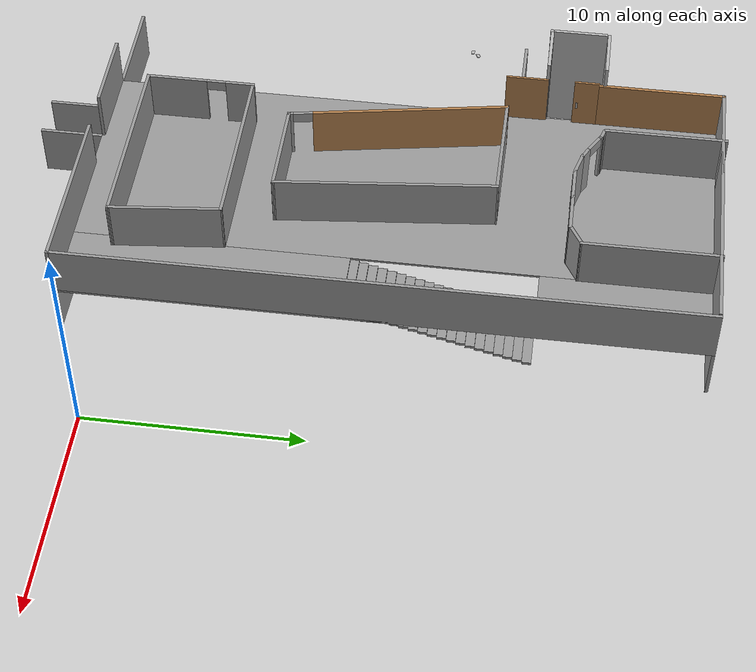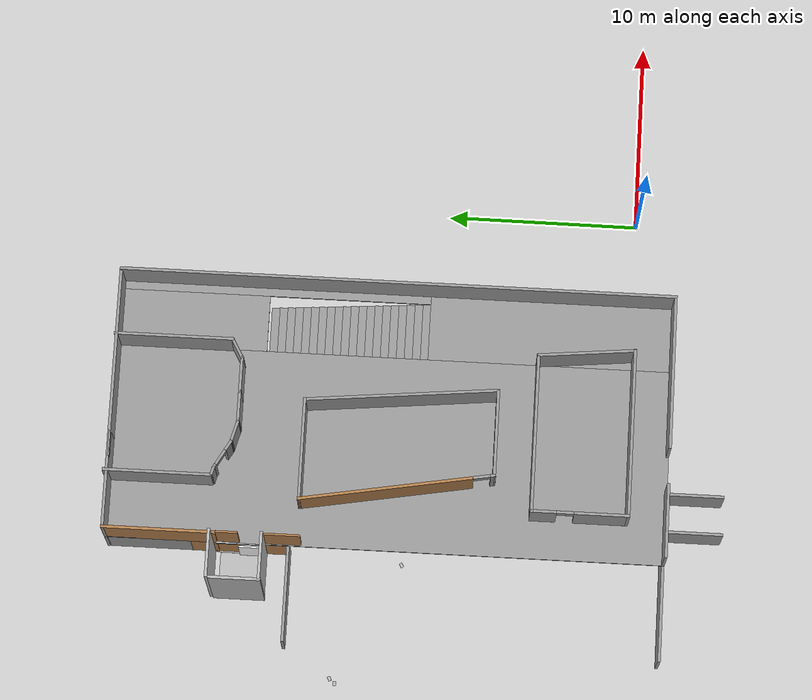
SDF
<sdf version="1.5">
 <world name="default">
  <model name="ground_plane">
   <static>1</static>
   <link name="link">
    <collision name="collision">
     <geometry><plane><normal>0 0 1</normal><size>100 100</size></plane></geometry>
     <surface>
      <contact><collide_bitmask>65535</collide_bitmask></contact>
      <friction><ode><mu>100</mu><mu2>50</mu2></ode></friction>
     </surface>
    </collision>
    <visual name="visual">
     <cast_shadows>0</cast_shadows>
     <geometry><plane><normal>0 0 1</normal><size>100 100</size></plane></geometry>
     <material>
      <script><uri>file://media/materials/scripts/gazebo.material</uri><name>Gazebo/Grey</name></script>
     </material>
    </visual>
   </link>
  </model>
  <model name="elevator">
   <pose>-20 20 0.001 -0 -0 -0</pose>
   <link name="link">
    <inertial>
     <mass>800</mass>
     <inertia><ixx>1</ixx><ixy>0</ixy><ixz>0</ixz><iyy>1</iyy><iyz>0</iyz><izz>1</izz></inertia>
    </inertial>
    <collision name="floor_collision"><geometry><box><size>2.25 2.25 0.001</size></box></geometry></collision>
    <visual name="floor_visual"><geometry><box><size>2.25 2.25 0.001</size></box></geometry></visual>
    <collision name="wall1_collision_bot_in">
     <pose>0.06 0.25 1.125 0 -0 0</pose>
     <geometry><box><size>0.01 0.09 0.36</size></box></geometry>
    </collision>
    <visual name="wall1_visual_bot_in">
     <pose>1 1.25 1.125 0 -0 1.577</pose>
     <geometry><box><size>0.01 0.09 0.36</size></box></geometry>
     <material>
      <script>
       <uri>model://elevator_shaft/materials/scripts</uri>
       <uri>model://elevator_shaft/materials/textures</uri>
       <name>Up_down/Diffuse</name>
      </script>
     </material>
    </visual>
   </link>
   <link name="door">
    <pose>1.0745 -0.5 1.125 0 -0 0</pose>
    <collision name="collision"><geometry><box><size>0.08 1.2 2.25</size></box></geometry></collision>
    <visual name="visual">
     <material>
      <script>
       <uri>model://elevator_door/materials/scripts</uri>
       <uri>model://elevator_door/materials/textures</uri>
       <name>Elevator_door/Picture</name>
      </script>
      <shader type="pixel"><normal_map>__default__</normal_map></shader>
      <ambient>1 1 1 1</ambient>
      <diffuse>1 1 1 1</diffuse>
      <specular>0 0 0 1</specular>
      <emissive>0 0 0 1</emissive>
     </material>
     <geometry><box><size>0.08 1.2 2.25</size></box></geometry>
    </visual>
    <inertial>
     <inertia><ixx>1</ixx><ixy>0</ixy><ixz>0</ixz><iyy>1</iyy><iyz>0</iyz><izz>1</izz></inertia>
     <mass>1</mass>
    </inertial>
   </link>
   <joint name="door" type="prismatic">
    <parent>link</parent>
    <child>door</child>
    <axis>
     <xyz>0 1 0</xyz>
     <limit><lower>0</lower><upper>1.19</upper><effort>0.525</effort></limit>
     <dynamics>
      <damping>1</damping>
      <spring_reference>0</spring_reference>
      <spring_stiffness>0</spring_stiffness>
     </dynamics>
     <use_parent_model_frame>0</use_parent_model_frame>
    </axis>
   </joint>
   <joint name="lift" type="prismatic">
    <parent>world</parent>
    <child>link</child>
    <axis>
     <xyz>0 0 1</xyz>
     <limit><lower>0</lower><upper>10</upper><effort>100000</effort></limit>
     <dynamics>
      <damping>50</damping>
      <spring_reference>0</spring_reference>
      <spring_stiffness>0</spring_stiffness>
     </dynamics>
     <use_parent_model_frame>0</use_parent_model_frame>
    </axis>
    <physics>
     <ode><implicit_spring_damper>1</implicit_spring_damper><limit><cfm>0</cfm><erp>0.2</erp></limit></ode>
    </physics>
   </joint>
   <plugin name="elevator_plugin" filename="libElevatorPlugin.so">
    <lift_joint>elevator::lift</lift_joint>
    <door_joint>elevator::door</door_joint>
    <floor_height>2.675</floor_height>
    <door_wait_time>8</door_wait_time>
    <topic>~/elevator</topic>
   </plugin>
  </model>
  <model name="elevator_shaft">
   <pose>-20 20 0 0 -0 0</pose>
   <static>1</static>
   <link name="link">
    <collision name="shaft_wall1_collision">
     <pose>0 1.45 3 0 -0 0</pose>
     <geometry><box><size>2.5 0.15 6</size></box></geometry>
    </collision>
    <visual name="shaft_wall1_visual">
     <pose>0 1.45 3 0 -0 0</pose>
     <geometry><box><size>2.5 0.15 6</size></box></geometry>
    </visual>
    <collision name="shaft_wall2_collision">
     <pose>0 -1.25 3 0 -0 0</pose>
     <geometry><box><size>2.5 0.15 6</size></box></geometry>
    </collision>
    <visual name="shaft_wall2_visual">
     <pose>0 -1.25 3 0 -0 0</pose>
     <geometry><box><size>2.5 0.15 6</size></box></geometry>
    </visual>
    <collision name="shaft_wall3_collision">
     <pose>-1.25 0 3 0 -0 0</pose>
     <geometry><box><size>0.15 2.7 6</size></box></geometry>
    </collision>
    <visual name="shaft_wall3_visual">
     <pose>-1.25 0 3 0 -0 0</pose>
     <geometry><box><size>0.15 2.7 6</size></box></geometry>
    </visual>
    <collision name="floor0_collision">
     <pose>1.19 0 0.001 0 -0 0</pose>
     <geometry><box><size>0.12 2.5 0.001</size></box></geometry>
    </collision>
    <visual name="floor0_visual">
     <pose>1.19 0 0.001 0 -0 0</pose>
     <geometry><box><size>0.12 2.5 0.001</size></box></geometry>
    </visual>
    <collision name="floor1_collision">
     <pose>1.19 0 2.525 0 -0 0</pose>
     <geometry><box><size>0.12 2.5 0.15</size></box></geometry>
    </collision>
    <visual name="floor1_visual">
     <pose>1.19 0 2.525 0 -0 0</pose>
     <geometry><box><size>0.12 2.5 0.15</size></box></geometry>
    </visual>
   </link>
  </model>
  <model name="elevator_2.5">
   <pose>-18.75 20 0 0 -0 0</pose>
   <link name="Wall_0">
    <collision name="Wall_0_Collision">
     <geometry><box><size>1.4 0.15 2.5</size></box></geometry>
     <pose>0 0 1.25 0 -0 0</pose>
    </collision>
    <visual name="Wall_0_Visual">
     <pose>0 0 1.25 0 -0 0</pose>
     <meta><layer>0</layer></meta>
     <geometry><box><size>1.4 0.15 2.5</size></box></geometry>
     <material><script><name>Gazebo/Wood</name><uri>__default__</uri></script></material>
    </visual>
    <pose>0 -1.875 0 0 0 -1.5708</pose>
   </link>
   <pose>0.02 -1.1 1.15 0 -0 0</pose>
   <link name="Wall_2">
    <collision name="Wall_2_Collision">
     <geometry><box><size>1.4 0.15 2.5</size></box></geometry>
     <pose>0 0 1.25 0 -0 0</pose>
    </collision>
    <visual name="Wall_2_Visual">
     <pose>0 0 1.25 0 -0 0</pose>
     <geometry><box><size>1.4 0.15 2.5</size></box></geometry>
     <material><script><name>Gazebo/Wood</name><uri>__default__</uri></script></material>
    </visual>
    <pose>0 1.875 0 0 0 -1.5708</pose>
   </link>
   <link name="right_elevator_wall_floor_0">
    <collision name="wall1_collision">
     <pose>0 0.6 1.125 0 -0 0</pose>
     <geometry><box><size>0.1 1.15 2.85</size></box></geometry>
    </collision>
    <visual name="wall1_visual">
     <pose>0 0.6 1.125 0 -0 0</pose>
     <geometry><box><size>0.1 1.15 2.85</size></box></geometry>
     <material><script><name>Gazebo/Wood</name><uri>__default__</uri></script></material>
    </visual>
    <collision name="wall1_collision_bot">
     <pose>0.06 0.3 1.125 0 -0 0</pose>
     <geometry><box><size>0.01 0.09 0.36</size></box></geometry>
    </collision>
    <visual name="wall1_visual_bot">
     <pose>0.06 0.25 1.125 0 -0 0</pose>
     <geometry><box><size>0.01 0.09 0.36</size></box></geometry>
     <material>
      <script>
       <uri>model://elevator_shaft_first_floor/materials/scripts</uri>
       <uri>model://elevator_shaft_first_floor/materials/textures</uri>
       <name>Up_down_first_floor/Diffuse</name>
      </script>
     </material>
    </visual>
   </link>
   <static>1</static>
  </model>
  <model name="Building_37">
   <pose>-14.375 11 0 0 -0 0</pose>
   <link name="Floor_0">
    <pose>2.5 1.3455 2.5 0 -0 0</pose>
    <visual name="Floor_0_Visual_0">
     <pose>-1.7875 0.15 0.05 0 -0 0</pose>
     <meta><layer>1</layer></meta>
     <geometry><box><size>10.325 29.15 0.1</size></box></geometry>
     <material>
      <script><uri>file://media/materials/scripts/gazebo.material</uri><name>Gazebo/Grey</name></script>
      <ambient>1 1 1 1</ambient>
     </material>
    </visual>
    <collision name="Floor_0_Collision_0">
     <geometry><box><size>10.325 29.15 0.1</size></box></geometry>
     <pose>-1.7875 0.15 0.05 0 -0 0</pose>
    </collision>
    <visual name="Floor_0_Visual_1">
     <pose>5.1625 -8 0.05 0 -0 0</pose>
     <meta><layer>1</layer></meta>
     <geometry><box><size>3.575 12.85 0.1</size></box></geometry>
     <material>
      <script><uri>file://media/materials/scripts/gazebo.material</uri><name>Gazebo/Grey</name></script>
      <ambient>1 1 1 1</ambient>
     </material>
    </visual>
    <collision name="Floor_0_Collision_1">
     <geometry><box><size>3.575 12.85 0.1</size></box></geometry>
     <pose>5.1625 -8 0.05 0 -0 0</pose>
    </collision>
    <visual name="Floor_0_Visual_2">
     <pose>6.6625 6.567 0.05 0 -0 0</pose>
     <meta><layer>1</layer></meta>
     <geometry><box><size>0.575 16.325 0.1</size></box></geometry>
     <material>
      <script><uri>file://media/materials/scripts/gazebo.material</uri><name>Gazebo/Grey</name></script>
      <ambient>1 1 1 1</ambient>
     </material>
    </visual>
    <collision name="Floor_0_Collision_2">
     <geometry><box><size>0.575 16.325 0.1</size></box></geometry>
     <pose>6.6625 6.567 0.05 0 -0 0</pose>
    </collision>
    <visual name="Floor_0_Visual_3">
     <pose>4.875 10.817 0.05 0 -0 0</pose>
     <meta><layer>1</layer></meta>
     <geometry><box><size>3 7.825 0.1</size></box></geometry>
     <material>
      <script><uri>file://media/materials/scripts/gazebo.material</uri><name>Gazebo/Grey</name></script>
      <ambient>1 1 1 1</ambient>
     </material>
    </visual>
    <collision name="Floor_0_Collision_3">
     <geometry><box><size>3 7.825 0.1</size></box></geometry>
     <pose>4.875 10.817 0.05 0 -0 0</pose>
    </collision>
   </link>
   <link name="Stairs_1">
    <visual name="Stairs_1_Visual_0">
     <pose>7.375 8.0375 0.0625 0 -0 0</pose>
     <meta><layer>2</layer></meta>
     <geometry><box><size>3 0.425 0.125</size></box></geometry>
     <material>
      <script><uri>file://media/materials/scripts/gazebo.material</uri><name>Gazebo/Grey</name></script>
      <ambient>1 1 1 1</ambient>
     </material>
    </visual>
    <collision name="Stairs_1_Collision_0">
     <geometry><box><size>3 0.425 0.125</size></box></geometry>
     <pose>7.375 8.0375 0.0625 0 -0 0</pose>
    </collision>
    <visual name="Stairs_1_Visual_1">
     <pose>7.375 7.6125 0.1875 0 -0 0</pose>
     <meta><layer>2</layer></meta>
     <geometry><box><size>3 0.425 0.125</size></box></geometry>
     <material>
      <script><uri>file://media/materials/scripts/gazebo.material</uri><name>Gazebo/Grey</name></script>
      <ambient>1 1 1 1</ambient>
     </material>
    </visual>
    <collision name="Stairs_1_Collision_1">
     <geometry><box><size>3 0.425 0.125</size></box></geometry>
     <pose>7.375 7.6125 0.1875 0 -0 0</pose>
    </collision>
    <visual name="Stairs_1_Visual_2">
     <pose>7.375 7.1875 0.3125 0 -0 0</pose>
     <meta><layer>2</layer></meta>
     <geometry><box><size>3 0.425 0.125</size></box></geometry>
     <material>
      <script><uri>file://media/materials/scripts/gazebo.material</uri><name>Gazebo/Grey</name></script>
      <ambient>1 1 1 1</ambient>
     </material>
    </visual>
    <collision name="Stairs_1_Collision_2">
     <geometry><box><size>3 0.425 0.125</size></box></geometry>
     <pose>7.375 7.1875 0.3125 0 -0 0</pose>
    </collision>
    <visual name="Stairs_1_Visual_3">
     <pose>7.375 6.7625 0.4375 0 -0 0</pose>
     <meta><layer>2</layer></meta>
     <geometry><box><size>3 0.425 0.125</size></box></geometry>
     <material>
      <script><uri>file://media/materials/scripts/gazebo.material</uri><name>Gazebo/Grey</name></script>
      <ambient>1 1 1 1</ambient>
     </material>
    </visual>
    <collision name="Stairs_1_Collision_3">
     <geometry><box><size>3 0.425 0.125</size></box></geometry>
     <pose>7.375 6.7625 0.4375 0 -0 0</pose>
    </collision>
    <visual name="Stairs_1_Visual_4">
     <pose>7.375 6.3375 0.5625 0 -0 0</pose>
     <meta><layer>2</layer></meta>
     <geometry><box><size>3 0.425 0.125</size></box></geometry>
     <material>
      <script><uri>file://media/materials/scripts/gazebo.material</uri><name>Gazebo/Grey</name></script>
      <ambient>1 1 1 1</ambient>
     </material>
    </visual>
    <collision name="Stairs_1_Collision_4">
     <geometry><box><size>3 0.425 0.125</size></box></geometry>
     <pose>7.375 6.3375 0.5625 0 -0 0</pose>
    </collision>
    <visual name="Stairs_1_Visual_5">
     <pose>7.375 5.9125 0.6875 0 -0 0</pose>
     <meta><layer>2</layer></meta>
     <geometry><box><size>3 0.425 0.125</size></box></geometry>
     <material>
      <script><uri>file://media/materials/scripts/gazebo.material</uri><name>Gazebo/Grey</name></script>
      <ambient>1 1 1 1</ambient>
     </material>
    </visual>
    <collision name="Stairs_1_Collision_5">
     <geometry><box><size>3 0.425 0.125</size></box></geometry>
     <pose>7.375 5.9125 0.6875 0 -0 0</pose>
    </collision>
    <visual name="Stairs_1_Visual_6">
     <pose>7.375 5.4875 0.8125 0 -0 0</pose>
     <meta><layer>2</layer></meta>
     <geometry><box><size>3 0.425 0.125</size></box></geometry>
     <material>
      <script><uri>file://media/materials/scripts/gazebo.material</uri><name>Gazebo/Grey</name></script>
      <ambient>1 1 1 1</ambient>
     </material>
    </visual>
    <collision name="Stairs_1_Collision_6">
     <geometry><box><size>3 0.425 0.125</size></box></geometry>
     <pose>7.375 5.4875 0.8125 0 -0 0</pose>
    </collision>
    <visual name="Stairs_1_Visual_7">
     <pose>7.375 5.0625 0.9375 0 -0 0</pose>
     <meta><layer>2</layer></meta>
     <geometry><box><size>3 0.425 0.125</size></box></geometry>
     <material>
      <script><uri>file://media/materials/scripts/gazebo.material</uri><name>Gazebo/Grey</name></script>
      <ambient>1 1 1 1</ambient>
     </material>
    </visual>
    <collision name="Stairs_1_Collision_7">
     <geometry><box><size>3 0.425 0.125</size></box></geometry>
     <pose>7.375 5.0625 0.9375 0 -0 0</pose>
    </collision>
    <visual name="Stairs_1_Visual_8">
     <pose>7.375 4.6375 1.0625 0 -0 0</pose>
     <meta><layer>2</layer></meta>
     <geometry><box><size>3 0.425 0.125</size></box></geometry>
     <material>
      <script><uri>file://media/materials/scripts/gazebo.material</uri><name>Gazebo/Grey</name></script>
      <ambient>1 1 1 1</ambient>
     </material>
    </visual>
    <collision name="Stairs_1_Collision_8">
     <geometry><box><size>3 0.425 0.125</size></box></geometry>
     <pose>7.375 4.6375 1.0625 0 -0 0</pose>
    </collision>
    <visual name="Stairs_1_Visual_9">
     <pose>7.375 4.2125 1.1875 0 -0 0</pose>
     <meta><layer>2</layer></meta>
     <geometry><box><size>3 0.425 0.125</size></box></geometry>
     <material>
      <script><uri>file://media/materials/scripts/gazebo.material</uri><name>Gazebo/Grey</name></script>
      <ambient>1 1 1 1</ambient>
     </material>
    </visual>
    <collision name="Stairs_1_Collision_9">
     <geometry><box><size>3 0.425 0.125</size></box></geometry>
     <pose>7.375 4.2125 1.1875 0 -0 0</pose>
    </collision>
    <visual name="Stairs_1_Visual_10">
     <pose>7.375 3.7875 1.3125 0 -0 0</pose>
     <meta><layer>2</layer></meta>
     <geometry><box><size>3 0.425 0.125</size></box></geometry>
     <material>
      <script><uri>file://media/materials/scripts/gazebo.material</uri><name>Gazebo/Grey</name></script>
      <ambient>1 1 1 1</ambient>
     </material>
    </visual>
    <collision name="Stairs_1_Collision_10">
     <geometry><box><size>3 0.425 0.125</size></box></geometry>
     <pose>7.375 3.7875 1.3125 0 -0 0</pose>
    </collision>
    <visual name="Stairs_1_Visual_11">
     <pose>7.375 3.3625 1.4375 0 -0 0</pose>
     <meta><layer>2</layer></meta>
     <geometry><box><size>3 0.425 0.125</size></box></geometry>
     <material>
      <script><uri>file://media/materials/scripts/gazebo.material</uri><name>Gazebo/Grey</name></script>
      <ambient>1 1 1 1</ambient>
     </material>
    </visual>
    <collision name="Stairs_1_Collision_11">
     <geometry><box><size>3 0.425 0.125</size></box></geometry>
     <pose>7.375 3.3625 1.4375 0 -0 0</pose>
    </collision>
    <visual name="Stairs_1_Visual_12">
     <pose>7.375 2.9375 1.5625 0 -0 0</pose>
     <meta><layer>2</layer></meta>
     <geometry><box><size>3 0.425 0.125</size></box></geometry>
     <material>
      <script><uri>file://media/materials/scripts/gazebo.material</uri><name>Gazebo/Grey</name></script>
      <ambient>1 1 1 1</ambient>
     </material>
    </visual>
    <collision name="Stairs_1_Collision_12">
     <geometry><box><size>3 0.425 0.125</size></box></geometry>
     <pose>7.375 2.9375 1.5625 0 -0 0</pose>
    </collision>
    <visual name="Stairs_1_Visual_13">
     <pose>7.375 2.5125 1.6875 0 -0 0</pose>
     <meta><layer>2</layer></meta>
     <geometry><box><size>3 0.425 0.125</size></box></geometry>
     <material>
      <script><uri>file://media/materials/scripts/gazebo.material</uri><name>Gazebo/Grey</name></script>
      <ambient>1 1 1 1</ambient>
     </material>
    </visual>
    <collision name="Stairs_1_Collision_13">
     <geometry><box><size>3 0.425 0.125</size></box></geometry>
     <pose>7.375 2.5125 1.6875 0 -0 0</pose>
    </collision>
    <visual name="Stairs_1_Visual_14">
     <pose>7.375 2.0875 1.8125 0 -0 0</pose>
     <meta><layer>2</layer></meta>
     <geometry><box><size>3 0.425 0.125</size></box></geometry>
     <material>
      <script><uri>file://media/materials/scripts/gazebo.material</uri><name>Gazebo/Grey</name></script>
      <ambient>1 1 1 1</ambient>
     </material>
    </visual>
    <collision name="Stairs_1_Collision_14">
     <geometry><box><size>3 0.425 0.125</size></box></geometry>
     <pose>7.375 2.0875 1.8125 0 -0 0</pose>
    </collision>
    <visual name="Stairs_1_Visual_15">
     <pose>7.375 1.6625 1.9375 0 -0 0</pose>
     <meta><layer>2</layer></meta>
     <geometry><box><size>3 0.425 0.125</size></box></geometry>
     <material>
      <script><uri>file://media/materials/scripts/gazebo.material</uri><name>Gazebo/Grey</name></script>
      <ambient>1 1 1 1</ambient>
     </material>
    </visual>
    <collision name="Stairs_1_Collision_15">
     <geometry><box><size>3 0.425 0.125</size></box></geometry>
     <pose>7.375 1.6625 1.9375 0 -0 0</pose>
    </collision>
    <visual name="Stairs_1_Visual_16">
     <pose>7.375 1.2375 2.0625 0 -0 0</pose>
     <meta><layer>2</layer></meta>
     <geometry><box><size>3 0.425 0.125</size></box></geometry>
     <material>
      <script><uri>file://media/materials/scripts/gazebo.material</uri><name>Gazebo/Grey</name></script>
      <ambient>1 1 1 1</ambient>
     </material>
    </visual>
    <collision name="Stairs_1_Collision_16">
     <geometry><box><size>3 0.425 0.125</size></box></geometry>
     <pose>7.375 1.2375 2.0625 0 -0 0</pose>
    </collision>
    <visual name="Stairs_1_Visual_17">
     <pose>7.375 0.8125 2.1875 0 -0 0</pose>
     <meta><layer>2</layer></meta>
     <geometry><box><size>3 0.425 0.125</size></box></geometry>
     <material>
      <script><uri>file://media/materials/scripts/gazebo.material</uri><name>Gazebo/Grey</name></script>
      <ambient>1 1 1 1</ambient>
     </material>
    </visual>
    <collision name="Stairs_1_Collision_17">
     <geometry><box><size>3 0.425 0.125</size></box></geometry>
     <pose>7.375 0.8125 2.1875 0 -0 0</pose>
    </collision>
    <visual name="Stairs_1_Visual_18">
     <pose>7.375 0.3875 2.3125 0 -0 0</pose>
     <meta><layer>2</layer></meta>
     <geometry><box><size>3 0.425 0.125</size></box></geometry>
     <material>
      <script><uri>file://media/materials/scripts/gazebo.material</uri><name>Gazebo/Grey</name></script>
      <ambient>1 1 1 1</ambient>
     </material>
    </visual>
    <collision name="Stairs_1_Collision_18">
     <geometry><box><size>3 0.425 0.125</size></box></geometry>
     <pose>7.375 0.3875 2.3125 0 -0 0</pose>
    </collision>
    <visual name="Stairs_1_Visual_19">
     <pose>7.375 -0.037501 2.4375 0 -0 0</pose>
     <meta><layer>2</layer></meta>
     <geometry><box><size>3 0.425 0.125</size></box></geometry>
     <material>
      <script><uri>file://media/materials/scripts/gazebo.material</uri><name>Gazebo/Grey</name></script>
      <ambient>1 1 1 1</ambient>
     </material>
    </visual>
    <collision name="Stairs_1_Collision_19">
     <geometry><box><size>3 0.425 0.125</size></box></geometry>
     <pose>7.375 -0.037501 2.4375 0 -0 0</pose>
    </collision>
   </link>
   <link name="Wall_27">
    <collision name="Wall_27_Collision">
     <geometry><box><size>6.9 0.15 2.5</size></box></geometry>
     <pose>0 0 1.25 0 -0 0</pose>
    </collision>
    <visual name="Wall_27_Visual">
     <pose>0 0 1.25 0 -0 0</pose>
     <geometry><box><size>6.9 0.15 2.5</size></box></geometry>
     <material>
      <script><uri>file://media/materials/scripts/gazebo.material</uri><name>Gazebo/Grey</name></script>
      <ambient>1 1 1 1</ambient>
     </material>
    </visual>
    <pose>-6 -13 0 0 -0 0</pose>
   </link>
   <link name="Wall_28">
    <collision name="Wall_28_Collision">
     <geometry><box><size>3.15 0.15 2.5</size></box></geometry>
     <pose>0 0 1.25 0 -0 0</pose>
    </collision>
    <visual name="Wall_28_Visual">
     <pose>0 0 1.25 0 -0 0</pose>
     <geometry><box><size>3.15 0.15 2.5</size></box></geometry>
     <material>
      <script><uri>file://media/materials/scripts/gazebo.material</uri><name>Gazebo/Grey</name></script>
      <ambient>1 1 1 1</ambient>
     </material>
    </visual>
    <pose>-2.625 -14.5 0 0 0 -1.5708</pose>
   </link>
   <link name="Wall_30">
    <collision name="Wall_30_Collision">
     <geometry><box><size>10.15 0.15 2.5</size></box></geometry>
     <pose>0 0 1.25 0 -0 0</pose>
    </collision>
    <visual name="Wall_30_Visual">
     <pose>0 0 1.25 0 -0 0</pose>
     <geometry><box><size>10.15 0.15 2.5</size></box></geometry>
     <material>
      <script><uri>file://media/materials/scripts/gazebo.material</uri><name>Gazebo/Grey</name></script>
      <ambient>1 1 1 1</ambient>
     </material>
    </visual>
    <pose>4.375 -13 0 0 -0 3.14159</pose>
   </link>
   <link name="Wall_31">
    <collision name="Wall_31_Collision">
     <geometry><box><size>3.15 0.15 2.5</size></box></geometry>
     <pose>0 0 1.25 0 -0 0</pose>
    </collision>
    <visual name="Wall_31_Visual">
     <pose>0 0 1.25 0 -0 0</pose>
     <geometry><box><size>3.15 0.15 2.5</size></box></geometry>
     <material>
      <script><uri>file://media/materials/scripts/gazebo.material</uri><name>Gazebo/Grey</name></script>
      <ambient>1 1 1 1</ambient>
     </material>
    </visual>
    <pose>-0.625 -14.5 0 0 0 -1.5708</pose>
   </link>
   <link name="Wall_33">
    <collision name="Wall_33_Collision">
     <geometry><box><size>5.9 0.15 2.5</size></box></geometry>
     <pose>0 0 1.25 0 -0 0</pose>
    </collision>
    <visual name="Wall_33_Visual">
     <pose>0 0 1.25 0 -0 0</pose>
     <meta><layer>3</layer></meta>
     <geometry><box><size>5.9 0.15 2.5</size></box></geometry>
     <material><script><name>Gazebo/Wood</name><uri>__default__</uri></script></material>
    </visual>
    <pose>-4.375 13.125 2.5 0 0 -1.5708</pose>
   </link>
   <pose>-4.35 9.85 3.7 0 -0 0</pose>
   <link name="right_elevator_wall_floor_1">
    <collision name="wall1_collision">
     <pose>-4.32 9.6 3.7 0 -0 0</pose>
     <geometry><box><size>0.1 1.15 2.85</size></box></geometry>
    </collision>
    <visual name="wall1_visual">
     <pose>-4.35 9.6 3.7 0 -0 0</pose>
     <geometry><box><size>0.1 1.15 2.85</size></box></geometry>
     <material><script><name>Gazebo/Wood</name><uri>__default__</uri></script></material>
    </visual>
    <collision name="wall1_collision_bot">
     <pose>-4.3 9.2 3.7 0 -0 0</pose>
     <geometry><box><size>0.01 0.09 0.36</size></box></geometry>
    </collision>
    <visual name="wall1_visual_bot">
     <pose>-4.3 9.2 3.7 0 -0 0</pose>
     <geometry><box><size>0.01 0.09 0.36</size></box></geometry>
     <material>
      <script>
       <uri>model://elevator_shaft_second_floor/materials/scripts</uri>
       <uri>model://elevator_shaft_second_floor/materials/textures</uri>
       <name>Up_down_second_floor/Diffuse</name>
      </script>
     </material>
    </visual>
   </link>
   <link name="left_elevator_wall_floor_1">
    <collision name="wall1_collision_l">
     <pose>-4.32 6.8 3.7 0 -0 0</pose>
     <geometry><box><size>0.1 2 2.85</size></box></geometry>
    </collision>
    <visual name="wall1_visual_l">
     <pose>-4.35 6.8 3.7 0 -0 0</pose>
     <geometry><box><size>0.1 2 2.85</size></box></geometry>
     <material><script><name>Gazebo/Wood</name><uri>__default__</uri></script></material>
    </visual>
   </link>
   <link name="Wall_34">
    <collision name="Wall_34_Collision">
     <geometry><box><size>5.15 0.15 2.5</size></box></geometry>
     <pose>0 0 1.25 0 -0 0</pose>
    </collision>
    <visual name="Wall_34_Visual">
     <pose>0 0 1.25 0 -0 0</pose>
     <meta><layer>3</layer></meta>
     <geometry><box><size>5.15 0.15 2.5</size></box></geometry>
     <material>
      <script><uri>file://media/materials/scripts/gazebo.material</uri><name>Gazebo/Grey</name></script>
      <ambient>1 1 1 1</ambient>
     </material>
    </visual>
    <pose>-1.875 16 2.5 0 -0 0</pose>
   </link>
   <link name="Wall_35">
    <collision name="Wall_35_Collision">
     <geometry><box><size>6.9 0.15 2.5</size></box></geometry>
     <pose>0 0 1.25 0 -0 0</pose>
    </collision>
    <visual name="Wall_35_Visual">
     <pose>-1.7 0 1.25 0 -0 0</pose>
     <meta><layer>3</layer></meta>
     <geometry><box><size>9.9 0.15 2.5</size></box></geometry>
     <material>
      <script><uri>file://media/materials/scripts/gazebo.material</uri><name>Gazebo/Grey</name></script>
      <ambient>1 1 1 1</ambient>
     </material>
    </visual>
    <pose>6 16 2.5 0 -0 0</pose>
   </link>
   <pose>-4.32 7.95 3.7 0 -0 0</pose>
   <link name="Wall_38">
    <pose>-1.5 1 2.5 0 0 -1.39755</pose>
    <visual name="Wall_38_Visual_0">
     <pose>-0.58726 0 1.25 0 -0 0</pose>
     <meta><layer>3</layer></meta>
     <geometry><box><size>9.12745 0.15 2.5</size></box></geometry>
     <material>
      <script><uri>file://media/materials/scripts/gazebo.material</uri><name>Gazebo/Wood</name></script>
      <ambient>1 1 1 1</ambient>
     </material>
    </visual>
    <collision name="Wall_38_Collision_0">
     <geometry><box><size>9.12745 0.15 2.5</size></box></geometry>
     <pose>-0.58726 0 1.25 0 -0 0</pose>
    </collision>
    <visual name="Wall_38_Visual_1">
     <pose>5.01372 0 1.25 0 -0 0</pose>
     <meta><layer>3</layer></meta>
     <geometry><box><size>0.274521 0.15 2.5</size></box></geometry>
     <material>
      <script><uri>file://media/materials/scripts/gazebo.material</uri><name>Gazebo/Grey</name></script>
      <ambient>1 1 1 1</ambient>
     </material>
    </visual>
    <collision name="Wall_38_Collision_1">
     <geometry><box><size>0.274521 0.15 2.5</size></box></geometry>
     <pose>5.01372 0 1.25 0 -0 0</pose>
    </collision>
    <visual name="Wall_38_Visual_2">
     <pose>4.42646 0 2.25 0 -0 0</pose>
     <meta><layer>3</layer></meta>
     <geometry><box><size>0.9 0.15 0.5</size></box></geometry>
     <material>
      <script><uri>file://media/materials/scripts/gazebo.material</uri><name>Gazebo/Grey</name></script>
      <ambient>1 1 1 1</ambient>
     </material>
    </visual>
    <collision name="Wall_38_Collision_2">
     <geometry><box><size>0.9 0.15 0.5</size></box></geometry>
     <pose>4.42646 0 2.25 0 -0 0</pose>
    </collision>
   </link>
   <link name="Wall_39">
    <collision name="Wall_39_Collision">
     <geometry><box><size>4.65 0.15 2.5</size></box></geometry>
     <pose>0 0 1.25 0 -0 0</pose>
    </collision>
    <visual name="Wall_39_Visual">
     <pose>0 0 1.25 0 -0 0</pose>
     <meta><layer>3</layer></meta>
     <geometry><box><size>4.65 0.15 2.5</size></box></geometry>
     <material>
      <script><uri>file://media/materials/scripts/gazebo.material</uri><name>Gazebo/Grey</name></script>
      <ambient>1 1 1 1</ambient>
     </material>
    </visual>
    <pose>1.625 -4 2.5 0 -0 0</pose>
   </link>
   <link name="Wall_4">
    <collision name="Wall_4_Collision">
     <geometry><box><size>5.15 0.15 2.5</size></box></geometry>
     <pose>0 0 1.25 0 -0 0</pose>
    </collision>
    <visual name="Wall_4_Visual">
     <pose>0 0 1.25 0 -0 0</pose>
     <geometry><box><size>5.15 0.15 2.5</size></box></geometry>
     <material>
      <script><uri>file://media/materials/scripts/gazebo.material</uri><name>Gazebo/Grey</name></script>
      <ambient>1 1 1 1</ambient>
     </material>
    </visual>
    <pose>-1.875 16 0 0 -0 0</pose>
   </link>
   <link name="Wall_40">
    <collision name="Wall_40_Collision">
     <geometry><box><size>10.1999 0.15 2.5</size></box></geometry>
     <pose>0 0 1.25 0 -0 0</pose>
    </collision>
    <visual name="Wall_40_Visual">
     <pose>0 0 1.25 0 -0 0</pose>
     <meta><layer>3</layer></meta>
     <geometry><box><size>10.1999 0.15 2.5</size></box></geometry>
     <material>
      <script><uri>file://media/materials/scripts/gazebo.material</uri><name>Gazebo/Grey</name></script>
      <ambient>1 1 1 1</ambient>
     </material>
    </visual>
    <pose>3.375 1 2.5 0 -0 1.67047</pose>
   </link>
   <link name="Wall_41">
    <collision name="Wall_41_Collision">
     <geometry><box><size>5.4 0.15 2.5</size></box></geometry>
     <pose>0 0 1.25 0 -0 0</pose>
    </collision>
    <visual name="Wall_41_Visual">
     <pose>0 0 1.25 0 -0 0</pose>
     <meta><layer>3</layer></meta>
     <geometry><box><size>5.4 0.15 2.5</size></box></geometry>
     <material>
      <script><uri>file://media/materials/scripts/gazebo.material</uri><name>Gazebo/Grey</name></script>
      <ambient>1 1 1 1</ambient>
     </material>
    </visual>
    <pose>0.25 6 2.5 0 -0 3.14159</pose>
   </link>
   <link name="Wall_42">
    <collision name="Wall_42_Collision">
     <geometry><box><size>8.4 0.15 2.5</size></box></geometry>
     <pose>0 0 1.25 0 -0 0</pose>
    </collision>
    <visual name="Wall_42_Visual">
     <pose>0 0 1.25 0 -0 0</pose>
     <meta><layer>3</layer></meta>
     <geometry><box><size>8.4 0.15 2.5</size></box></geometry>
     <material>
      <script><uri>file://media/materials/scripts/gazebo.material</uri><name>Gazebo/Grey</name></script>
      <ambient>1 1 1 1</ambient>
     </material>
    </visual>
    <pose>1.75 -6 2.5 0 -0 0</pose>
   </link>
   <link name="Wall_43">
    <collision name="Wall_43_Collision">
     <geometry><box><size>5.17494 0.15 2.5</size></box></geometry>
     <pose>0 0 1.25 0 -0 0</pose>
    </collision>
    <visual name="Wall_43_Visual">
     <pose>0 0 1.25 0 -0 0</pose>
     <meta><layer>3</layer></meta>
     <geometry><box><size>5.17494 0.15 2.5</size></box></geometry>
     <material>
      <script><uri>file://media/materials/scripts/gazebo.material</uri><name>Gazebo/Grey</name></script>
      <ambient>1 1 1 1</ambient>
     </material>
    </visual>
    <pose>6.125 -8.5 2.5 0 0 -1.47113</pose>
   </link>
   <link name="Wall_44">
    <collision name="Wall_44_Collision">
     <geometry><box><size>8.9 0.15 2.5</size></box></geometry>
     <pose>0 0 1.25 0 -0 0</pose>
    </collision>
    <visual name="Wall_44_Visual">
     <pose>0 0 1.25 0 -0 0</pose>
     <meta><layer>3</layer></meta>
     <geometry><box><size>8.9 0.15 2.5</size></box></geometry>
     <material>
      <script><uri>file://media/materials/scripts/gazebo.material</uri><name>Gazebo/Grey</name></script>
      <ambient>1 1 1 1</ambient>
     </material>
    </visual>
    <pose>2 -11 2.5 0 -0 3.14159</pose>
   </link>
   <link name="Wall_45">
    <pose>-2.375 -8.5 2.5 0 -0 1.5708</pose>
    <visual name="Wall_45_Visual_0">
     <pose>-1.13354 0 1.25 0 -0 0</pose>
     <meta><layer>3</layer></meta>
     <geometry><box><size>2.88293 0.15 2.5</size></box></geometry>
     <material>
      <script><uri>file://media/materials/scripts/gazebo.material</uri><name>Gazebo/Grey</name></script>
      <ambient>1 1 1 1</ambient>
     </material>
    </visual>
    <collision name="Wall_45_Collision_0">
     <geometry><box><size>2.88293 0.15 2.5</size></box></geometry>
     <pose>-1.13354 0 1.25 0 -0 0</pose>
    </collision>
    <visual name="Wall_45_Visual_1">
     <pose>1.89146 0 1.25 0 -0 0</pose>
     <meta><layer>3</layer></meta>
     <geometry><box><size>1.36708 0.15 2.5</size></box></geometry>
     <material>
      <script><uri>file://media/materials/scripts/gazebo.material</uri><name>Gazebo/Grey</name></script>
      <ambient>1 1 1 1</ambient>
     </material>
    </visual>
    <collision name="Wall_45_Collision_1">
     <geometry><box><size>1.36708 0.15 2.5</size></box></geometry>
     <pose>1.89146 0 1.25 0 -0 0</pose>
    </collision>
    <visual name="Wall_45_Visual_2">
     <pose>0.757925 0 2.25 0 -0 0</pose>
     <meta><layer>3</layer></meta>
     <geometry><box><size>0.9 0.15 0.5</size></box></geometry>
     <material>
      <script><uri>file://media/materials/scripts/gazebo.material</uri><name>Gazebo/Grey</name></script>
      <ambient>1 1 1 1</ambient>
     </material>
    </visual>
    <collision name="Wall_45_Collision_2">
     <geometry><box><size>0.9 0.15 0.5</size></box></geometry>
     <pose>0.757925 0 2.25 0 -0 0</pose>
    </collision>
   </link>
   <link name="Wall_46">
    <collision name="Wall_46_Collision">
     <geometry><box><size>29.15 0.15 2.5</size></box></geometry>
     <pose>0 0 1.25 0 -0 0</pose>
    </collision>
    <visual name="Wall_46_Visual">
     <pose>0 0 1.25 0 -0 0</pose>
     <meta><layer>3</layer></meta>
     <geometry><box><size>29.15 0.15 2.5</size></box></geometry>
     <material>
      <script><uri>file://media/materials/scripts/gazebo.material</uri><name>Gazebo/Grey</name></script>
      <ambient>1 1 1 1</ambient>
     </material>
    </visual>
    <pose>9.375 1.5 2.5 0 0 -1.5708</pose>
   </link>
   <link name="Wall_47">
    <collision name="Wall_47_Collision">
     <geometry><box><size>3.9 0.15 2.5</size></box></geometry>
     <pose>0 0 1.25 0 -0 0</pose>
    </collision>
    <visual name="Wall_47_Visual">
     <pose>0 0 1.25 0 -0 0</pose>
     <meta><layer>3</layer></meta>
     <geometry><box><size>3.9 0.15 2.5</size></box></geometry>
     <material>
      <script><uri>file://media/materials/scripts/gazebo.material</uri><name>Gazebo/Grey</name></script>
      <ambient>1 1 1 1</ambient>
     </material>
    </visual>
    <pose>-2.5 -13 2.5 0 -0 0</pose>
   </link>
   <link name="Wall_49">
    <collision name="Wall_49_Collision">
     <geometry><box><size>8.15 0.15 2.5</size></box></geometry>
     <pose>0 0 1.25 0 -0 0</pose>
    </collision>
    <visual name="Wall_49_Visual">
     <pose>0 0 1.25 0 -0 0</pose>
     <meta><layer>3</layer></meta>
     <geometry><box><size>8.15 0.15 2.5</size></box></geometry>
     <material>
      <script><uri>file://media/materials/scripts/gazebo.material</uri><name>Gazebo/Grey</name></script>
      <ambient>1 1 1 1</ambient>
     </material>
    </visual>
    <pose>5.375 -13 2.5 0 -0 3.14159</pose>
   </link>
   <link name="Wall_6">
    <collision name="Wall_6_Collision">
     <geometry><box><size>6.9 0.15 2.5</size></box></geometry>
     <pose>0 0 1.25 0 -0 0</pose>
    </collision>
    <visual name="Wall_6_Visual">
     <pose>0 0 1.25 0 -0 0</pose>
     <geometry><box><size>6.9 0.15 2.5</size></box></geometry>
     <material>
      <script><uri>file://media/materials/scripts/gazebo.material</uri><name>Gazebo/Grey</name></script>
      <ambient>1 1 1 1</ambient>
     </material>
    </visual>
    <pose>6 16 0 0 -0 0</pose>
   </link>
   <link name="Wall_8">
    <collision name="Wall_8_Collision">
     <geometry><box><size>5.15 0.15 2.5</size></box></geometry>
     <pose>0 0 1.25 0 -0 0</pose>
    </collision>
    <visual name="Wall_8_Visual">
     <pose>0 0 1.25 0 -0 0</pose>
     <geometry><box><size>5.15 0.15 2.5</size></box></geometry>
     <material>
      <script><uri>file://media/materials/scripts/gazebo.material</uri><name>Gazebo/Grey</name></script>
      <ambient>1 1 1 1</ambient>
     </material>
    </visual>
    <pose>-6.875 6.5 0 0 -0 3.14159</pose>
   </link>
   <static>1</static>
  </model>
  <model name="add11">
   <pose>-18.746 24.654 0 0 -0 0</pose>
   <link name="Wall_11">
    <collision name="Wall_11_Collision">
     <geometry><box><size>4.5 0.15 2.5</size></box></geometry>
     <pose>0 0 1.25 0 -0 0</pose>
    </collision>
    <visual name="Wall_11_Visual">
     <pose>0 0 1.25 0 -0 0</pose>
     <geometry><box><size>4.5 0.15 2.5</size></box></geometry>
     <material>
      <script><uri>file://media/materials/scripts/gazebo.material</uri><name>Gazebo/Grey</name></script>
      <ambient>1 1 1 1</ambient>
     </material>
     <meta><layer>0</layer></meta>
    </visual>
    <pose>0 0 0 0 -0 -1.5708</pose>
   </link>
   <static>1</static>
  </model>
  <model name="second_add_11">
   <pose>-12.257 19.2956 0 0 -0 0</pose>
   <link name="Wall_59">
    <collision name="Wall_59_Collision">
     <geometry><box><size>5.25 0.15 2.5</size></box></geometry>
     <pose>0 0 1.25 0 -0 0</pose>
    </collision>
    <visual name="Wall_59_Visual">
     <pose>0 0 1.25 0 -0 0</pose>
     <geometry><box><size>5.65 0.15 2.5</size></box></geometry>
     <material>
      <script><uri>file://media/materials/scripts/gazebo.material</uri><name>Gazebo/Grey</name></script>
      <ambient>1 1 1 1</ambient>
     </material>
     <meta><layer>1</layer></meta>
    </visual>
    <pose>-3.49298 5.10197 2.5 0 -0 1.5708</pose>
   </link>
   <link name="Wall_62">
    <collision name="Wall_62_Collision">
     <geometry><box><size>0.5 0.15 2.5</size></box></geometry>
     <pose>0 0 1.25 0 -0 0</pose>
    </collision>
    <visual name="Wall_62_Visual">
     <pose>0 0 1.25 0 -0 0</pose>
     <geometry><box><size>0.5 0.15 2.5</size></box></geometry>
     <material>
      <script><uri>file://media/materials/scripts/gazebo.material</uri><name>Gazebo/Grey</name></script>
      <ambient>1 1 1 1</ambient>
     </material>
     <meta><layer>1</layer></meta>
    </visual>
    <pose>-3.25746 2.22924 2.5 0 -0 -0.261799</pose>
   </link>
   <link name="Wall_63">
    <pose>-2.3956 1.78395 2.5 0 -0 -0.523599</pose>
    <visual name="Wall_63_Visual_0">
     <pose>-0.74962 0 1.25 0 -0 0</pose>
     <geometry><box><size>0.25076 0.15 2.5</size></box></geometry>
     <material>
      <script><uri>file://media/materials/scripts/gazebo.material</uri><name>Gazebo/Grey</name></script>
      <ambient>1 1 1 1</ambient>
     </material>
     <meta><layer>1</layer></meta>
    </visual>
    <collision name="Wall_63_Collision_0">
     <geometry><box><size>0.25076 0.15 2.5</size></box></geometry>
     <pose>-0.74962 0 1.25 0 -0 0</pose>
    </collision>
    <visual name="Wall_63_Visual_1">
     <pose>0.57538 0 1.25 0 -0 0</pose>
     <geometry><box><size>0.59924 0.15 2.5</size></box></geometry>
     <material>
      <script><uri>file://media/materials/scripts/gazebo.material</uri><name>Gazebo/Grey</name></script>
      <ambient>1 1 1 1</ambient>
     </material>
     <meta><layer>1</layer></meta>
    </visual>
    <collision name="Wall_63_Collision_1">
     <geometry><box><size>0.59924 0.15 2.5</size></box></geometry>
     <pose>0.57538 0 1.25 0 -0 0</pose>
    </collision>
    <visual name="Wall_63_Visual_2">
     <pose>-0.17424 0 2.25 0 -0 0</pose>
     <geometry><box><size>0.9 0.15 0.5</size></box></geometry>
     <material>
      <script><uri>file://media/materials/scripts/gazebo.material</uri><name>Gazebo/Grey</name></script>
      <ambient>1 1 1 1</ambient>
     </material>
     <meta><layer>1</layer></meta>
    </visual>
    <collision name="Wall_63_Collision_2">
     <geometry><box><size>0.9 0.15 0.5</size></box></geometry>
     <pose>-0.17424 0 2.25 0 -0 0</pose>
    </collision>
   </link>
   <link name="Wall_64">
    <collision name="Wall_64_Collision">
     <geometry><box><size>1.25 0.15 2.5</size></box></geometry>
     <pose>0 0 1.25 0 -0 0</pose>
    </collision>
    <visual name="Wall_64_Visual">
     <pose>0 0 1.25 0 -0 0</pose>
     <geometry><box><size>1.25 0.15 2.5</size></box></geometry>
     <material>
      <script><uri>file://media/materials/scripts/gazebo.material</uri><name>Gazebo/Grey</name></script>
      <ambient>1 1 1 1</ambient>
     </material>
     <meta><layer>1</layer></meta>
    </visual>
    <pose>-1.17152 1.2416 2.5 0 -0 -0.261799</pose>
   </link>
   <link name="Wall_65">
    <collision name="Wall_65_Collision">
     <geometry><box><size>1.75 0.15 2.5</size></box></geometry>
     <pose>0 0 1.25 0 -0 0</pose>
    </collision>
    <visual name="Wall_65_Visual">
     <pose>0 0 1.25 0 -0 0</pose>
     <geometry><box><size>1.75 0.15 2.5</size></box></geometry>
     <material>
      <script><uri>file://media/materials/scripts/gazebo.material</uri><name>Gazebo/Grey</name></script>
      <ambient>1 1 1 1</ambient>
     </material>
     <meta><layer>1</layer></meta>
    </visual>
    <pose>0.159736 1.09925 2.5 0 -0 0</pose>
   </link>
   <link name="Wall_66">
    <collision name="Wall_66_Collision">
     <geometry><box><size>2 0.15 2.5</size></box></geometry>
     <pose>0 0 1.25 0 -0 0</pose>
    </collision>
    <visual name="Wall_66_Visual">
     <pose>0 0 1.25 0 -0 0</pose>
     <geometry><box><size>2 0.15 2.5</size></box></geometry>
     <material>
      <script><uri>file://media/materials/scripts/gazebo.material</uri><name>Gazebo/Grey</name></script>
      <ambient>1 1 1 1</ambient>
     </material>
     <meta><layer>1</layer></meta>
    </visual>
    <pose>1.88474 1.09925 2.5 0 -0 0</pose>
   </link>
   <link name="Wall_67">
    <collision name="Wall_67_Collision">
     <geometry><box><size>1.25 0.15 2.5</size></box></geometry>
     <pose>0 0 1.25 0 -0 0</pose>
    </collision>
    <visual name="Wall_67_Visual">
     <pose>0 0 1.25 0 -0 0</pose>
     <geometry><box><size>1.25 0.15 2.5</size></box></geometry>
     <material>
      <script><uri>file://media/materials/scripts/gazebo.material</uri><name>Gazebo/Grey</name></script>
      <ambient>1 1 1 1</ambient>
     </material>
     <meta><layer>1</layer></meta>
    </visual>
    <pose>3.28605 1.37425 2.5 0 -0 0.523599</pose>
   </link>
   <link name="Wall_68">
    <collision name="Wall_68_Collision">
     <geometry><box><size>6.25 0.15 2.5</size></box></geometry>
     <pose>0 0 1.25 0 -0 0</pose>
    </collision>
    <visual name="Wall_68_Visual">
     <pose>0 0 1.25 0 -0 0</pose>
     <geometry><box><size>6.25 0.15 2.5</size></box></geometry>
     <material>
      <script><uri>file://media/materials/scripts/gazebo.material</uri><name>Gazebo/Grey</name></script>
      <ambient>1 1 1 1</ambient>
     </material>
     <meta><layer>1</layer></meta>
    </visual>
    <pose>3.76236 4.69925 2.5 0 -0 1.5708</pose>
   </link>
   <static>1</static>
  </model>
  <model name="book_17">
   <link name="cover">
    <pose>0 -0.000108 0.015405 0 -0 0</pose>
    <visual name="visual">
     <geometry><box><size>0.245 0.16 0.03</size></box></geometry>
     <material>
      <script>
       <uri>model://book_17/materials/scripts</uri>
       <uri>model://book_17/materials/textures</uri>
       <name>book_17</name>
      </script>
     </material>
    </visual>
    <collision name="collision"><geometry><box><size>0.245 0.16 0.03</size></box></geometry></collision>
   </link>
   <link name="page">
    <pose>0 0.000608 0.015405 0 -0 0</pose>
    <visual name="visual">
     <geometry><box><size>0.24502 0.15862 0.028</size></box></geometry>
     <material>
      <lighting>1</lighting>
      <ambient>1 1 1 1</ambient>
      <diffuse>1 1 1 1</diffuse>
      <specular>0.01 0.01 0.01 1</specular>
      <emissive>0 0 0 1</emissive>
      <shader type="vertex"><normal_map>__default__</normal_map></shader>
     </material>
    </visual>
    <collision name="collision"><geometry><box><size>0.245 0.16 0.03</size></box></geometry></collision>
   </link>
   <static>1</static>
   <pose>-25.5669 14.7264 0.444005 0 -0 0</pose>
  </model>
  <model name="book_12">
   <link name="cover">
    <pose>0 -0.000108 0.015405 0 -0 0</pose>
    <visual name="visual">
     <geometry><box><size>0.245 0.16 0.03</size></box></geometry>
     <material>
      <script>
       <uri>model://book_12/materials/scripts</uri>
       <uri>model://book_12/materials/textures</uri>
       <name>book_12</name>
      </script>
     </material>
    </visual>
    <collision name="collision"><geometry><box><size>0.245 0.16 0.03</size></box></geometry></collision>
   </link>
   <link name="page">
    <pose>0 0.000608 0.015405 0 -0 0</pose>
    <visual name="visual">
     <geometry><box><size>0.24502 0.15862 0.028</size></box></geometry>
     <material>
      <lighting>1</lighting>
      <ambient>1 1 1 1</ambient>
      <diffuse>1 1 1 1</diffuse>
      <specular>0.01 0.01 0.01 1</specular>
      <emissive>0 0 0 1</emissive>
      <shader type="vertex"><normal_map>__default__</normal_map></shader>
     </material>
    </visual>
    <collision name="collision"><geometry><box><size>0.245 0.16 0.03</size></box></geometry></collision>
   </link>
   <static>1</static>
   <pose>-25.3297 15.0067 0.447993 0 -0 0.456508</pose>
  </model>
  <model name="book_5">
   <link name="cover">
    <pose>0 -0.000108 0.01 0 -0 0</pose>
    <visual name="visual">
     <geometry><box><size>0.245 0.16 0.02</size></box></geometry>
     <material>
      <script>
       <uri>model://book_5/materials/scripts</uri>
       <uri>model://book_5/materials/textures</uri>
       <name>book_5</name>
      </script>
     </material>
    </visual>
    <collision name="collision"><geometry><box><size>0.245 0.16 0.02</size></box></geometry></collision>
   </link>
   <link name="page">
    <pose>0 0.000608 0.01 0 -0 0</pose>
    <visual name="visual">
     <geometry><box><size>0.24502 0.15862 0.018</size></box></geometry>
     <material>
      <lighting>1</lighting>
      <ambient>1 1 1 1</ambient>
      <diffuse>1 1 1 1</diffuse>
      <specular>0.01 0.01 0.01 1</specular>
      <emissive>0 0 0 1</emissive>
      <shader type="vertex"><normal_map>__default__</normal_map></shader>
     </material>
    </visual>
    <collision name="collision"><geometry><box><size>0.245 0.16 0.018</size></box></geometry></collision>
   </link>
   <static>1</static>
   <pose>-19.2091 11.57 0.766353 0 -0 0.5893</pose>
  </model>
 </world>
</sdf>
